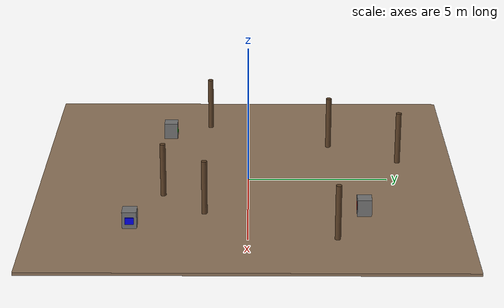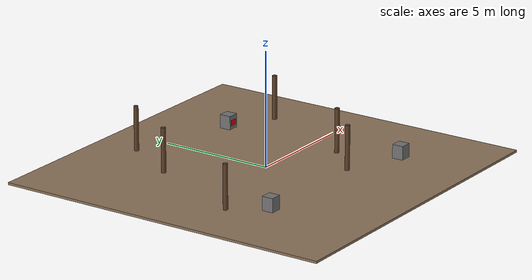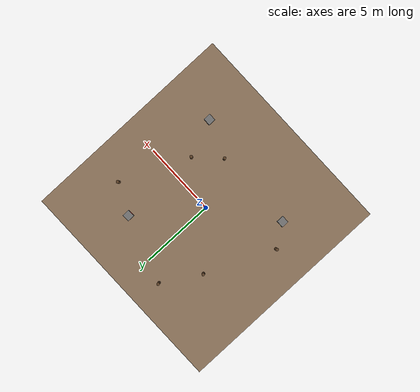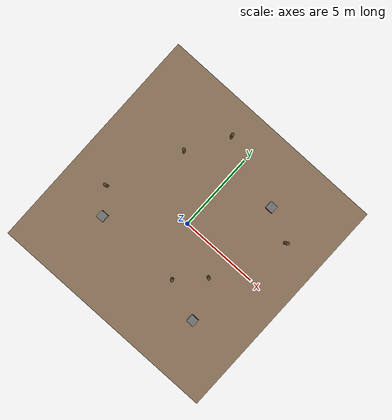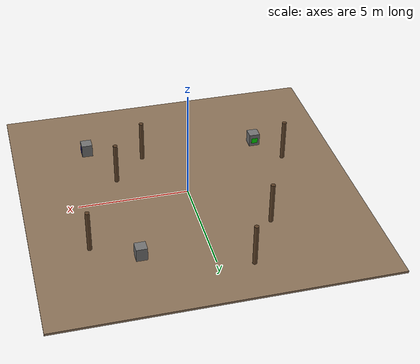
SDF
<sdf version="1.8">
 <world name="pioneer_world">
  <physics name="1ms" type="ignored">
   <max_step_size>0.001</max_step_size>
   <real_time_factor>1.0</real_time_factor>
  </physics>
  <plugin filename="libgz-sim-physics-system" name="gz::sim::systems::Physics"/>
  <plugin filename="libgz-sim-user-commands-system" name="gz::sim::systems::UserCommands"/>
  <plugin filename="libgz-sim-scene-broadcaster-system" name="gz::sim::systems::SceneBroadcaster"/>
  <plugin filename="libgz-sim-imu-system" name="gz::sim::systems::Imu"/>
  <plugin filename="libgz-sim-sensors-system.so" name="gz::sim::systems::Sensors"/>
  <plugin filename="libgz-sim-contact-system" name="gz::sim::systems::Contact"/>
  <light type="directional" name="sun">
   <pose>0 0 10 0 0 0</pose>
   <diffuse>0.8 0.8 0.8 1</diffuse>
   <specular>0.2 0.2 0.2 1</specular>
   <attenuation>
    <range>1000</range>
    <constant>0.9</constant>
    <linear>0.01</linear>
    <quadratic>0.001</quadratic>
   </attenuation>
   <direction>-0.5 0.1 -0.9</direction>
  </light>
  <model name="ground_plane">
   <static>true</static>
   <link name="link">
    <collision name="collision"><geometry><box><size>15 15 0.1</size></box></geometry></collision>
    <visual name="visual">
     <geometry><box><size>15 15 0.1</size></box></geometry>
     <material>
      <ambient>0.55 0.45 0.35 1</ambient>
      <diffuse>0.55 0.45 0.35 1</diffuse>
      <specular>0.1 0.1 0.1 1</specular>
     </material>
    </visual>
   </link>
  </model>
  <model name="obstacle_red">
   <static>true</static>
   <pose>3 4 0.325 0 0 0</pose>
   <link name="link">
    <visual name="visual_body">
     <geometry><box><size>0.5 0.5 0.65</size></box></geometry>
     <material>
      <ambient>0.45 0.45 0.45 1</ambient>
      <diffuse>0.45 0.45 0.45 1</diffuse>
      <specular>0.1 0.1 0.1 1</specular>
     </material>
    </visual>
    <visual name="visual_sign">
     <pose>0 -0.2525 0 0 0 0</pose>
     <geometry><box><size>0.3 0.005 0.25</size></box></geometry>
     <material>
      <ambient>0.9 0.0 0.0 1</ambient>
      <diffuse>0.9 0.0 0.0 1</diffuse>
      <specular>0.2 0.0 0.0 1</specular>
      <emissive>0.6 0.0 0.0 1</emissive>
     </material>
    </visual>
    <collision name="collision"><geometry><box><size>0.5 0.5 0.65</size></box></geometry></collision>
   </link>
  </model>
  <model name="obstacle_green">
   <static>true</static>
   <pose>-4 -3 0.325 0 0 3.14159</pose>
   <link name="link">
    <visual name="visual_body">
     <geometry><box><size>0.5 0.5 0.65</size></box></geometry>
     <material>
      <ambient>0.45 0.45 0.45 1</ambient>
      <diffuse>0.45 0.45 0.45 1</diffuse>
      <specular>0.1 0.1 0.1 1</specular>
     </material>
    </visual>
    <visual name="visual_sign">
     <pose>0 -0.2525 0 0 0 0</pose>
     <geometry><box><size>0.3 0.005 0.25</size></box></geometry>
     <material>
      <ambient>0.0 0.85 0.0 1</ambient>
      <diffuse>0.0 0.85 0.0 1</diffuse>
      <specular>0.0 0.2 0.0 1</specular>
      <emissive>0.0 0.5 0.0 1</emissive>
     </material>
    </visual>
    <collision name="collision"><geometry><box><size>0.5 0.5 0.65</size></box></geometry></collision>
   </link>
  </model>
  <model name="obstacle_blue">
   <static>true</static>
   <pose>4 -4 0.325 0 0 1.5708</pose>
   <link name="link">
    <visual name="visual_body">
     <geometry><box><size>0.5 0.5 0.65</size></box></geometry>
     <material>
      <ambient>0.45 0.45 0.45 1</ambient>
      <diffuse>0.45 0.45 0.45 1</diffuse>
      <specular>0.1 0.1 0.1 1</specular>
     </material>
    </visual>
    <visual name="visual_sign">
     <pose>0 -0.2525 0 0 0 0</pose>
     <geometry><box><size>0.3 0.005 0.25</size></box></geometry>
     <material>
      <ambient>0.0 0.0 0.9 1</ambient>
      <diffuse>0.0 0.0 0.9 1</diffuse>
      <specular>0.0 0.0 0.2 1</specular>
      <emissive>0.0 0.0 0.6 1</emissive>
     </material>
    </visual>
    <collision name="collision"><geometry><box><size>0.5 0.5 0.65</size></box></geometry></collision>
   </link>
  </model>
  <model name="tree_1">
   <static>true</static>
   <pose>-3.0  3.0 1.0 0 0 0</pose>
   <link name="link">
    <collision name="collision">
     <geometry><cylinder><radius>0.1</radius><length>2.0</length></cylinder></geometry>
    </collision>
    <visual name="visual">
     <geometry><cylinder><radius>0.1</radius><length>2.0</length></cylinder></geometry>
     <material><ambient>0.36 0.25 0.15 1</ambient><diffuse>0.36 0.25 0.15 1</diffuse></material>
    </visual>
   </link>
  </model>
  <model name="tree_2">
   <static>true</static>
   <pose>5.0  3.0 1.0 0 0 0</pose>
   <link name="link">
    <collision name="collision">
     <geometry><cylinder><radius>0.1</radius><length>2.0</length></cylinder></geometry>
    </collision>
    <visual name="visual">
     <geometry><cylinder><radius>0.1</radius><length>2.0</length></cylinder></geometry>
     <material><ambient>0.36 0.25 0.15 1</ambient><diffuse>0.36 0.25 0.15 1</diffuse></material>
    </visual>
   </link>
  </model>
  <model name="tree_3">
   <static>true</static>
   <pose>-5.0 -1.5 1.0 0 0 0</pose>
   <link name="link">
    <collision name="collision">
     <geometry><cylinder><radius>0.1</radius><length>2.0</length></cylinder></geometry>
    </collision>
    <visual name="visual">
     <geometry><cylinder><radius>0.1</radius><length>2.0</length></cylinder></geometry>
     <material><ambient>0.36 0.25 0.15 1</ambient><diffuse>0.36 0.25 0.15 1</diffuse></material>
    </visual>
   </link>
  </model>
  <model name="tree_4">
   <static>true</static>
   <pose>1.5 -3.0 1.0 0 0 0</pose>
   <link name="link">
    <collision name="collision">
     <geometry><cylinder><radius>0.1</radius><length>2.0</length></cylinder></geometry>
    </collision>
    <visual name="visual">
     <geometry><cylinder><radius>0.1</radius><length>2.0</length></cylinder></geometry>
     <material><ambient>0.36 0.25 0.15 1</ambient><diffuse>0.36 0.25 0.15 1</diffuse></material>
    </visual>
   </link>
  </model>
  <model name="tree_5">
   <static>true</static>
   <pose>-1.5  5.5 1.0 0 0 0</pose>
   <link name="link">
    <collision name="collision">
     <geometry><cylinder><radius>0.1</radius><length>2.0</length></cylinder></geometry>
    </collision>
    <visual name="visual">
     <geometry><cylinder><radius>0.1</radius><length>2.0</length></cylinder></geometry>
     <material><ambient>0.36 0.25 0.15 1</ambient><diffuse>0.36 0.25 0.15 1</diffuse></material>
    </visual>
   </link>
  </model>
  <model name="tree_6">
   <static>true</static>
   <pose>3.0 -1.5 1.0 0 0 0</pose>
   <link name="link">
    <collision name="collision">
     <geometry><cylinder><radius>0.1</radius><length>2.0</length></cylinder></geometry>
    </collision>
    <visual name="visual">
     <geometry><cylinder><radius>0.1</radius><length>2.0</length></cylinder></geometry>
     <material><ambient>0.36 0.25 0.15 1</ambient><diffuse>0.36 0.25 0.15 1</diffuse></material>
    </visual>
   </link>
  </model>
 </world>
</sdf>
